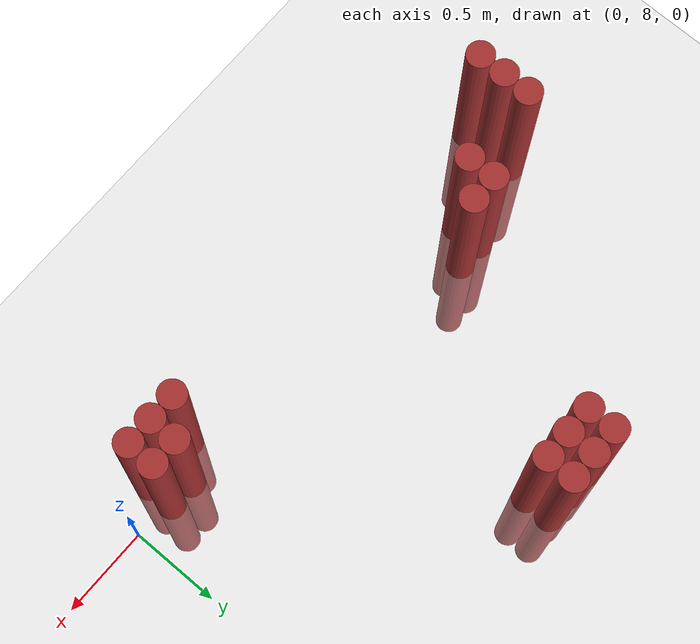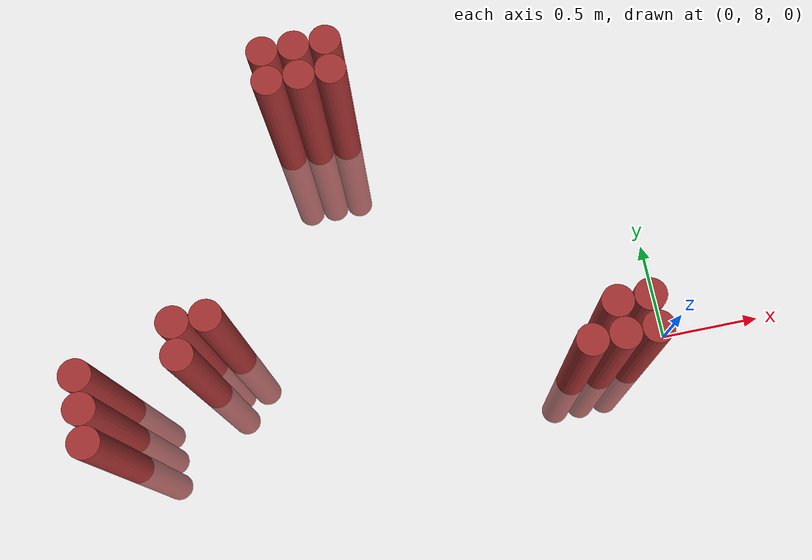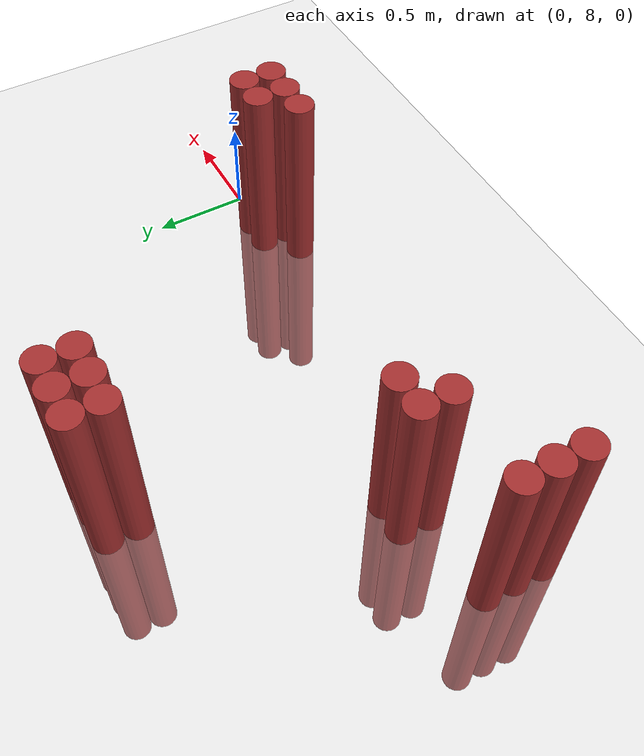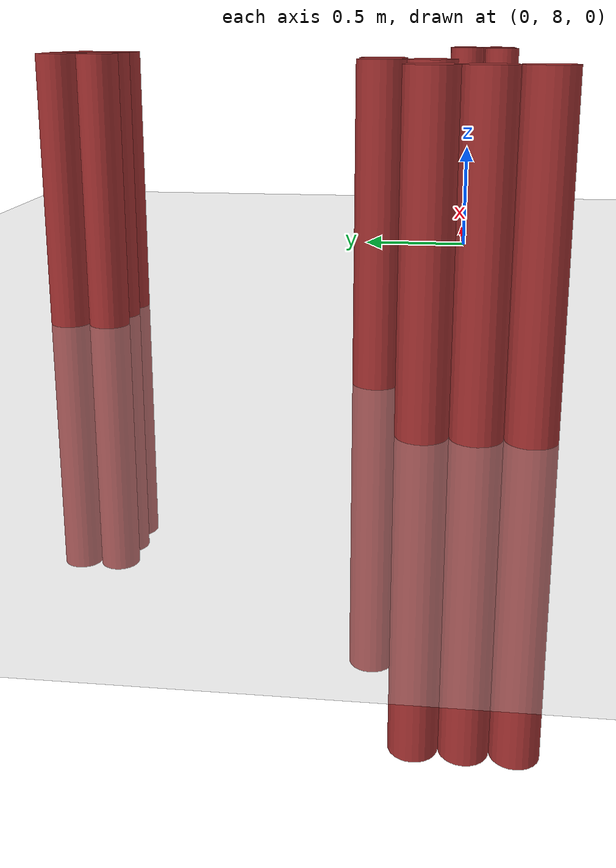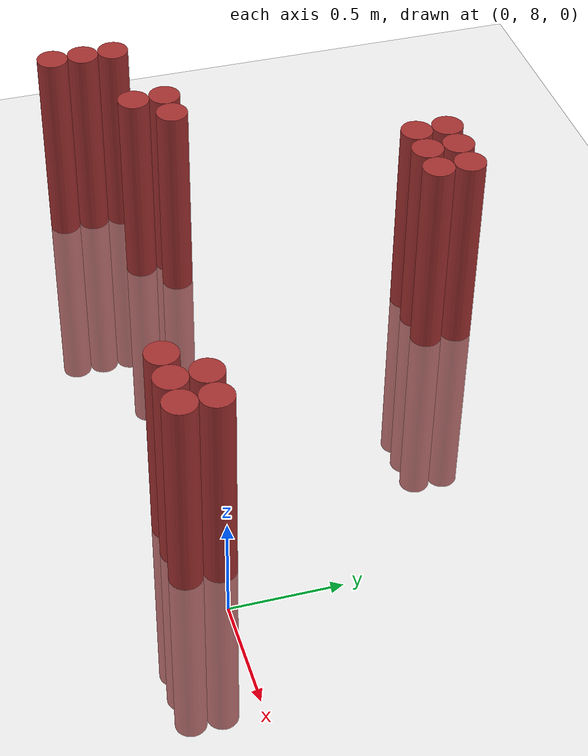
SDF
<sdf version="1.6">
 <world name="default">
  <model name="ground_plane">
   <static>1</static>
   <link name="link">
    <collision name="collision">
     <geometry><plane><normal>0 0 1</normal><size>100 100</size></plane></geometry>
     <surface><friction><ode><mu>100</mu><mu2>50</mu2></ode></friction></surface>
    </collision>
    <visual name="visual">
     <cast_shadows>0</cast_shadows>
     <geometry><plane><normal>0 0 1</normal><size>100 100</size></plane></geometry>
     <material>
      <script><uri>file://media/materials/scripts/gazebo.material</uri><name>Gazebo/Grey</name></script>
     </material>
    </visual>
   </link>
  </model>
  <model name="unit_cylinder_184">
   <static>1</static>
   <pose>-2.775000 7.875000 0.000000 0.000000 0.000000 0.000000</pose>
   <link name="link">
    <inertial>
     <mass>1</mass>
     <inertia><ixx>0.145833</ixx><ixy>0</ixy><ixz>0</ixz><iyy>0.145833</iyy><iyz>0</iyz><izz>0.125</izz></inertia>
    </inertial>
    <collision name="collision">
     <geometry><cylinder><radius>0.075000</radius><length>2</length></cylinder></geometry>
    </collision>
    <visual name="visual">
     <geometry><cylinder><radius>0.075000</radius><length>2</length></cylinder></geometry>
     <material>
      <ambient>0.648000 0.192000 0.192000 1</ambient>
      <diffuse>0.648000 0.192000 0.192000 1</diffuse>
     </material>
     <material>
      <script><name>Gazebo/Grey</name><uri>file://media/materials/scripts/gazebo.material</uri></script>
     </material>
    </visual>
   </link>
  </model>
  <model name="unit_cylinder_185">
   <static>1</static>
   <pose>-2.775000 8.025000 0.000000 0.000000 0.000000 0.000000</pose>
   <link name="link">
    <inertial>
     <mass>1</mass>
     <inertia><ixx>0.145833</ixx><ixy>0</ixy><ixz>0</ixz><iyy>0.145833</iyy><iyz>0</iyz><izz>0.125</izz></inertia>
    </inertial>
    <collision name="collision">
     <geometry><cylinder><radius>0.075000</radius><length>2</length></cylinder></geometry>
    </collision>
    <visual name="visual">
     <geometry><cylinder><radius>0.075000</radius><length>2</length></cylinder></geometry>
     <material>
      <ambient>0.648000 0.192000 0.192000 1</ambient>
      <diffuse>0.648000 0.192000 0.192000 1</diffuse>
     </material>
     <material>
      <script><name>Gazebo/Grey</name><uri>file://media/materials/scripts/gazebo.material</uri></script>
     </material>
    </visual>
   </link>
  </model>
  <model name="unit_cylinder_186">
   <static>1</static>
   <pose>-2.775000 8.175000 0.000000 0.000000 0.000000 0.000000</pose>
   <link name="link">
    <inertial>
     <mass>1</mass>
     <inertia><ixx>0.145833</ixx><ixy>0</ixy><ixz>0</ixz><iyy>0.145833</iyy><iyz>0</iyz><izz>0.125</izz></inertia>
    </inertial>
    <collision name="collision">
     <geometry><cylinder><radius>0.075000</radius><length>2</length></cylinder></geometry>
    </collision>
    <visual name="visual">
     <geometry><cylinder><radius>0.075000</radius><length>2</length></cylinder></geometry>
     <material>
      <ambient>0.648000 0.192000 0.192000 1</ambient>
      <diffuse>0.648000 0.192000 0.192000 1</diffuse>
     </material>
     <material>
      <script><name>Gazebo/Grey</name><uri>file://media/materials/scripts/gazebo.material</uri></script>
     </material>
    </visual>
   </link>
  </model>
  <model name="unit_cylinder_194">
   <static>1</static>
   <pose>-2.325000 8.175000 0.000000 0.000000 0.000000 0.000000</pose>
   <link name="link">
    <inertial>
     <mass>1</mass>
     <inertia><ixx>0.145833</ixx><ixy>0</ixy><ixz>0</ixz><iyy>0.145833</iyy><iyz>0</iyz><izz>0.125</izz></inertia>
    </inertial>
    <collision name="collision">
     <geometry><cylinder><radius>0.075000</radius><length>2</length></cylinder></geometry>
    </collision>
    <visual name="visual">
     <geometry><cylinder><radius>0.075000</radius><length>2</length></cylinder></geometry>
     <material>
      <ambient>0.648000 0.192000 0.192000 1</ambient>
      <diffuse>0.648000 0.192000 0.192000 1</diffuse>
     </material>
     <material>
      <script><name>Gazebo/Grey</name><uri>file://media/materials/scripts/gazebo.material</uri></script>
     </material>
    </visual>
   </link>
  </model>
  <model name="unit_cylinder_195">
   <static>1</static>
   <pose>-2.325000 8.325000 0.000000 0.000000 0.000000 0.000000</pose>
   <link name="link">
    <inertial>
     <mass>1</mass>
     <inertia><ixx>0.145833</ixx><ixy>0</ixy><ixz>0</ixz><iyy>0.145833</iyy><iyz>0</iyz><izz>0.125</izz></inertia>
    </inertial>
    <collision name="collision">
     <geometry><cylinder><radius>0.075000</radius><length>2</length></cylinder></geometry>
    </collision>
    <visual name="visual">
     <geometry><cylinder><radius>0.075000</radius><length>2</length></cylinder></geometry>
     <material>
      <ambient>0.648000 0.192000 0.192000 1</ambient>
      <diffuse>0.648000 0.192000 0.192000 1</diffuse>
     </material>
     <material>
      <script><name>Gazebo/Grey</name><uri>file://media/materials/scripts/gazebo.material</uri></script>
     </material>
    </visual>
   </link>
  </model>
  <model name="unit_cylinder_196">
   <static>1</static>
   <pose>-2.175000 8.325000 0.000000 0.000000 0.000000 0.000000</pose>
   <link name="link">
    <inertial>
     <mass>1</mass>
     <inertia><ixx>0.145833</ixx><ixy>0</ixy><ixz>0</ixz><iyy>0.145833</iyy><iyz>0</iyz><izz>0.125</izz></inertia>
    </inertial>
    <collision name="collision">
     <geometry><cylinder><radius>0.075000</radius><length>2</length></cylinder></geometry>
    </collision>
    <visual name="visual">
     <geometry><cylinder><radius>0.075000</radius><length>2</length></cylinder></geometry>
     <material>
      <ambient>0.648000 0.192000 0.192000 1</ambient>
      <diffuse>0.648000 0.192000 0.192000 1</diffuse>
     </material>
     <material>
      <script><name>Gazebo/Grey</name><uri>file://media/materials/scripts/gazebo.material</uri></script>
     </material>
    </visual>
   </link>
  </model>
  <model name="unit_cylinder_197">
   <static>1</static>
   <pose>-1.725000 9.375000 0.000000 0.000000 0.000000 0.000000</pose>
   <link name="link">
    <inertial>
     <mass>1</mass>
     <inertia><ixx>0.145833</ixx><ixy>0</ixy><ixz>0</ixz><iyy>0.145833</iyy><iyz>0</iyz><izz>0.125</izz></inertia>
    </inertial>
    <collision name="collision">
     <geometry><cylinder><radius>0.075000</radius><length>2</length></cylinder></geometry>
    </collision>
    <visual name="visual">
     <geometry><cylinder><radius>0.075000</radius><length>2</length></cylinder></geometry>
     <material>
      <ambient>0.648000 0.192000 0.192000 1</ambient>
      <diffuse>0.648000 0.192000 0.192000 1</diffuse>
     </material>
     <material>
      <script><name>Gazebo/Grey</name><uri>file://media/materials/scripts/gazebo.material</uri></script>
     </material>
    </visual>
   </link>
  </model>
  <model name="unit_cylinder_198">
   <static>1</static>
   <pose>-1.725000 9.525000 0.000000 0.000000 0.000000 0.000000</pose>
   <link name="link">
    <inertial>
     <mass>1</mass>
     <inertia><ixx>0.145833</ixx><ixy>0</ixy><ixz>0</ixz><iyy>0.145833</iyy><iyz>0</iyz><izz>0.125</izz></inertia>
    </inertial>
    <collision name="collision">
     <geometry><cylinder><radius>0.075000</radius><length>2</length></cylinder></geometry>
    </collision>
    <visual name="visual">
     <geometry><cylinder><radius>0.075000</radius><length>2</length></cylinder></geometry>
     <material>
      <ambient>0.648000 0.192000 0.192000 1</ambient>
      <diffuse>0.648000 0.192000 0.192000 1</diffuse>
     </material>
     <material>
      <script><name>Gazebo/Grey</name><uri>file://media/materials/scripts/gazebo.material</uri></script>
     </material>
    </visual>
   </link>
  </model>
  <model name="unit_cylinder_199">
   <static>1</static>
   <pose>-1.575000 9.375000 0.000000 0.000000 0.000000 0.000000</pose>
   <link name="link">
    <inertial>
     <mass>1</mass>
     <inertia><ixx>0.145833</ixx><ixy>0</ixy><ixz>0</ixz><iyy>0.145833</iyy><iyz>0</iyz><izz>0.125</izz></inertia>
    </inertial>
    <collision name="collision">
     <geometry><cylinder><radius>0.075000</radius><length>2</length></cylinder></geometry>
    </collision>
    <visual name="visual">
     <geometry><cylinder><radius>0.075000</radius><length>2</length></cylinder></geometry>
     <material>
      <ambient>0.648000 0.192000 0.192000 1</ambient>
      <diffuse>0.648000 0.192000 0.192000 1</diffuse>
     </material>
     <material>
      <script><name>Gazebo/Grey</name><uri>file://media/materials/scripts/gazebo.material</uri></script>
     </material>
    </visual>
   </link>
  </model>
  <model name="unit_cylinder_200">
   <static>1</static>
   <pose>-1.575000 9.525000 0.000000 0.000000 0.000000 0.000000</pose>
   <link name="link">
    <inertial>
     <mass>1</mass>
     <inertia><ixx>0.145833</ixx><ixy>0</ixy><ixz>0</ixz><iyy>0.145833</iyy><iyz>0</iyz><izz>0.125</izz></inertia>
    </inertial>
    <collision name="collision">
     <geometry><cylinder><radius>0.075000</radius><length>2</length></cylinder></geometry>
    </collision>
    <visual name="visual">
     <geometry><cylinder><radius>0.075000</radius><length>2</length></cylinder></geometry>
     <material>
      <ambient>0.648000 0.192000 0.192000 1</ambient>
      <diffuse>0.648000 0.192000 0.192000 1</diffuse>
     </material>
     <material>
      <script><name>Gazebo/Grey</name><uri>file://media/materials/scripts/gazebo.material</uri></script>
     </material>
    </visual>
   </link>
  </model>
  <model name="unit_cylinder_201">
   <static>1</static>
   <pose>-1.425000 9.375000 0.000000 0.000000 0.000000 0.000000</pose>
   <link name="link">
    <inertial>
     <mass>1</mass>
     <inertia><ixx>0.145833</ixx><ixy>0</ixy><ixz>0</ixz><iyy>0.145833</iyy><iyz>0</iyz><izz>0.125</izz></inertia>
    </inertial>
    <collision name="collision">
     <geometry><cylinder><radius>0.075000</radius><length>2</length></cylinder></geometry>
    </collision>
    <visual name="visual">
     <geometry><cylinder><radius>0.075000</radius><length>2</length></cylinder></geometry>
     <material>
      <ambient>0.648000 0.192000 0.192000 1</ambient>
      <diffuse>0.648000 0.192000 0.192000 1</diffuse>
     </material>
     <material>
      <script><name>Gazebo/Grey</name><uri>file://media/materials/scripts/gazebo.material</uri></script>
     </material>
    </visual>
   </link>
  </model>
  <model name="unit_cylinder_202">
   <static>1</static>
   <pose>-1.425000 9.525000 0.000000 0.000000 0.000000 0.000000</pose>
   <link name="link">
    <inertial>
     <mass>1</mass>
     <inertia><ixx>0.145833</ixx><ixy>0</ixy><ixz>0</ixz><iyy>0.145833</iyy><iyz>0</iyz><izz>0.125</izz></inertia>
    </inertial>
    <collision name="collision">
     <geometry><cylinder><radius>0.075000</radius><length>2</length></cylinder></geometry>
    </collision>
    <visual name="visual">
     <geometry><cylinder><radius>0.075000</radius><length>2</length></cylinder></geometry>
     <material>
      <ambient>0.648000 0.192000 0.192000 1</ambient>
      <diffuse>0.648000 0.192000 0.192000 1</diffuse>
     </material>
     <material>
      <script><name>Gazebo/Grey</name><uri>file://media/materials/scripts/gazebo.material</uri></script>
     </material>
    </visual>
   </link>
  </model>
  <model name="unit_cylinder_217">
   <static>1</static>
   <pose>-0.525000 7.875000 0.000000 0.000000 0.000000 0.000000</pose>
   <link name="link">
    <inertial>
     <mass>1</mass>
     <inertia><ixx>0.145833</ixx><ixy>0</ixy><ixz>0</ixz><iyy>0.145833</iyy><iyz>0</iyz><izz>0.125</izz></inertia>
    </inertial>
    <collision name="collision">
     <geometry><cylinder><radius>0.075000</radius><length>2</length></cylinder></geometry>
    </collision>
    <visual name="visual">
     <geometry><cylinder><radius>0.075000</radius><length>2</length></cylinder></geometry>
     <material>
      <ambient>0.648000 0.192000 0.192000 1</ambient>
      <diffuse>0.648000 0.192000 0.192000 1</diffuse>
     </material>
     <material>
      <script><name>Gazebo/Grey</name><uri>file://media/materials/scripts/gazebo.material</uri></script>
     </material>
    </visual>
   </link>
  </model>
  <model name="unit_cylinder_221">
   <static>1</static>
   <pose>-0.375000 7.875000 0.000000 0.000000 0.000000 0.000000</pose>
   <link name="link">
    <inertial>
     <mass>1</mass>
     <inertia><ixx>0.145833</ixx><ixy>0</ixy><ixz>0</ixz><iyy>0.145833</iyy><iyz>0</iyz><izz>0.125</izz></inertia>
    </inertial>
    <collision name="collision">
     <geometry><cylinder><radius>0.075000</radius><length>2</length></cylinder></geometry>
    </collision>
    <visual name="visual">
     <geometry><cylinder><radius>0.075000</radius><length>2</length></cylinder></geometry>
     <material>
      <ambient>0.648000 0.192000 0.192000 1</ambient>
      <diffuse>0.648000 0.192000 0.192000 1</diffuse>
     </material>
     <material>
      <script><name>Gazebo/Grey</name><uri>file://media/materials/scripts/gazebo.material</uri></script>
     </material>
    </visual>
   </link>
  </model>
  <model name="unit_cylinder_222">
   <static>1</static>
   <pose>-0.375000 8.025000 0.000000 0.000000 0.000000 0.000000</pose>
   <link name="link">
    <inertial>
     <mass>1</mass>
     <inertia><ixx>0.145833</ixx><ixy>0</ixy><ixz>0</ixz><iyy>0.145833</iyy><iyz>0</iyz><izz>0.125</izz></inertia>
    </inertial>
    <collision name="collision">
     <geometry><cylinder><radius>0.075000</radius><length>2</length></cylinder></geometry>
    </collision>
    <visual name="visual">
     <geometry><cylinder><radius>0.075000</radius><length>2</length></cylinder></geometry>
     <material>
      <ambient>0.648000 0.192000 0.192000 1</ambient>
      <diffuse>0.648000 0.192000 0.192000 1</diffuse>
     </material>
     <material>
      <script><name>Gazebo/Grey</name><uri>file://media/materials/scripts/gazebo.material</uri></script>
     </material>
    </visual>
   </link>
  </model>
  <model name="unit_cylinder_231">
   <static>1</static>
   <pose>-0.225000 7.875000 0.000000 0.000000 0.000000 0.000000</pose>
   <link name="link">
    <inertial>
     <mass>1</mass>
     <inertia><ixx>0.145833</ixx><ixy>0</ixy><ixz>0</ixz><iyy>0.145833</iyy><iyz>0</iyz><izz>0.125</izz></inertia>
    </inertial>
    <collision name="collision">
     <geometry><cylinder><radius>0.075000</radius><length>2</length></cylinder></geometry>
    </collision>
    <visual name="visual">
     <geometry><cylinder><radius>0.075000</radius><length>2</length></cylinder></geometry>
     <material>
      <ambient>0.648000 0.192000 0.192000 1</ambient>
      <diffuse>0.648000 0.192000 0.192000 1</diffuse>
     </material>
     <material>
      <script><name>Gazebo/Grey</name><uri>file://media/materials/scripts/gazebo.material</uri></script>
     </material>
    </visual>
   </link>
  </model>
  <model name="unit_cylinder_232">
   <static>1</static>
   <pose>-0.225000 8.025000 0.000000 0.000000 0.000000 0.000000</pose>
   <link name="link">
    <inertial>
     <mass>1</mass>
     <inertia><ixx>0.145833</ixx><ixy>0</ixy><ixz>0</ixz><iyy>0.145833</iyy><iyz>0</iyz><izz>0.125</izz></inertia>
    </inertial>
    <collision name="collision">
     <geometry><cylinder><radius>0.075000</radius><length>2</length></cylinder></geometry>
    </collision>
    <visual name="visual">
     <geometry><cylinder><radius>0.075000</radius><length>2</length></cylinder></geometry>
     <material>
      <ambient>0.648000 0.192000 0.192000 1</ambient>
      <diffuse>0.648000 0.192000 0.192000 1</diffuse>
     </material>
     <material>
      <script><name>Gazebo/Grey</name><uri>file://media/materials/scripts/gazebo.material</uri></script>
     </material>
    </visual>
   </link>
  </model>
 </world>
</sdf>
